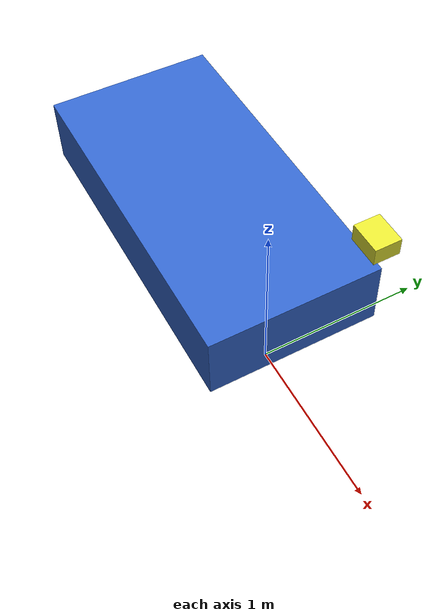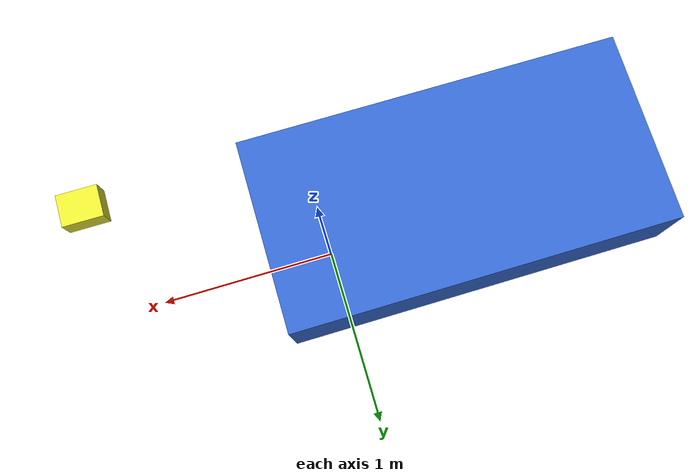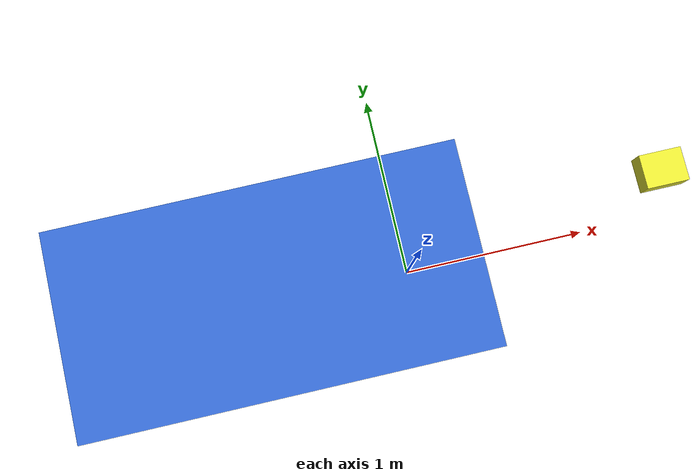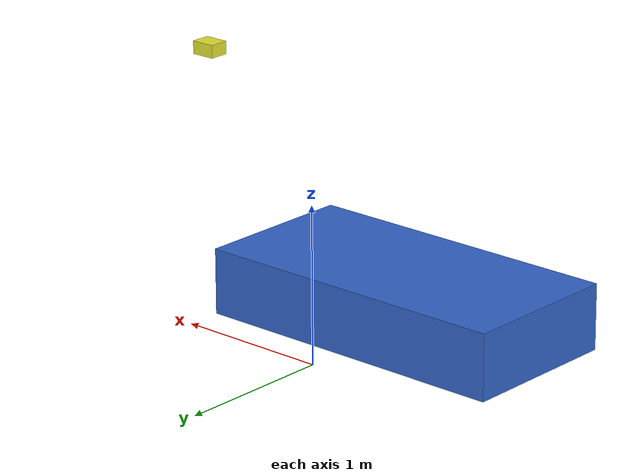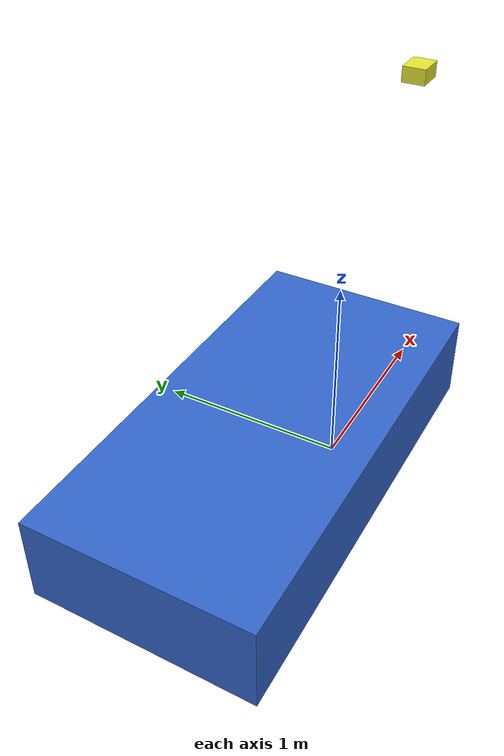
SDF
<?xml version="1.0"?>
<sdf version="1.10">
  <world name="radar_frame_linked_validation_world">
    <gravity>0 0 -9.81</gravity>

    <plugin
      filename="gz-sim-physics-system"
      name="gz::sim::systems::Physics"/>
    <plugin
      filename="gz-sim-user-commands-system"
      name="gz::sim::systems::UserCommands"/>
    <plugin
      filename="gz-sim-scene-broadcaster-system"
      name="gz::sim::systems::SceneBroadcaster"/>

    <light name="sun" type="directional">
      <cast_shadows>true</cast_shadows>
      <pose>0 0 100 0 0 0</pose>
      <diffuse>0.8 0.8 0.8 1</diffuse>
      <specular>0.2 0.2 0.2 1</specular>
      <direction>-0.2 0.3 -1</direction>
    </light>

    <model name="ego_usv_with_radar_link">
      <static>true</static>
      <pose>0 0 1.0 0 0 0</pose>

      <link name="base_link">
        <inertial>
          <mass>200.0</mass>
          <inertia>
            <ixx>50.0</ixx>
            <iyy>50.0</iyy>
            <izz>80.0</izz>
            <ixy>0</ixy>
            <ixz>0</ixz>
            <iyz>0</iyz>
          </inertia>
        </inertial>

        <collision name="hull_collision">
          <geometry>
            <box>
              <size>2.0 1.0 0.4</size>
            </box>
          </geometry>
          <pose>-0.7 0 -0.4 0 0 0</pose>
        </collision>

        <visual name="hull_visual">
          <geometry>
            <box>
              <size>2.0 1.0 0.4</size>
            </box>
          </geometry>
          <pose>-0.7 0 -0.4 0 0 0</pose>
          <material>
            <ambient>0.1 0.2 0.5 1</ambient>
            <diffuse>0.2 0.4 0.8 1</diffuse>
          </material>
        </visual>
      </link>

      <link name="radar_link">
        <pose>0.8 0 0.8 0 0 0</pose>
        <visual name="radar_visual">
          <geometry>
            <box>
              <size>0.15 0.12 0.08</size>
            </box>
          </geometry>
          <material>
            <ambient>0.8 0.8 0.1 1</ambient>
            <diffuse>0.9 0.9 0.2 1</diffuse>
          </material>
        </visual>
      </link>

      <joint name="radar_fixed_joint" type="fixed">
        <parent>base_link</parent>
        <child>radar_link</child>
      </joint>

      <plugin filename="libusv_4d_radar_plugin.so" name="usv_4d_radar_gz::FourDRadarPlugin">
        <topic>/radar/points_4d</topic>
        <frame_id>radar_link</frame_id>
        <sensor_link_name>radar_link</sensor_link_name>
        <ego_link_name>base_link</ego_link_name>
        <output_in_sensor_frame>true</output_in_sensor_frame>

        <horizontal_fov_deg>100.0</horizontal_fov_deg>
        <vertical_fov_deg>30.0</vertical_fov_deg>
        <azimuth_resolution_deg>1.0</azimuth_resolution_deg>
        <elevation_resolution_deg>1.0</elevation_resolution_deg>

        <min_range>0.8</min_range>
        <max_range>120.0</max_range>
        <update_rate_hz>10.0</update_rate_hz>

        <base_rcs>12.0</base_rcs>
        <rcs_distance_decay>0.01</rcs_distance_decay>

        <enable_sea_clutter>false</enable_sea_clutter>
        <sea_clutter_probability>0.0</sea_clutter_probability>
        <sea_clutter_amplitude>0.0</sea_clutter_amplitude>
      </plugin>
    </model>

    <model name="target_ship_metal_1">
      <static>true</static>
      <pose>22 0 1.0 0 0 0</pose>
      <link name="link">
        <collision name="collision">
          <geometry>
            <box>
              <size>6 3 2</size>
            </box>
          </geometry>
        </collision>
      </link>
    </model>

    <model name="target_ship_metal_2">
      <static>true</static>
      <pose>28 -8 1.2 0 0 0</pose>
      <link name="link">
        <collision name="collision">
          <geometry>
            <box>
              <size>5 2.5 2.0</size>
            </box>
          </geometry>
        </collision>
      </link>
    </model>
  </world>
</sdf>
